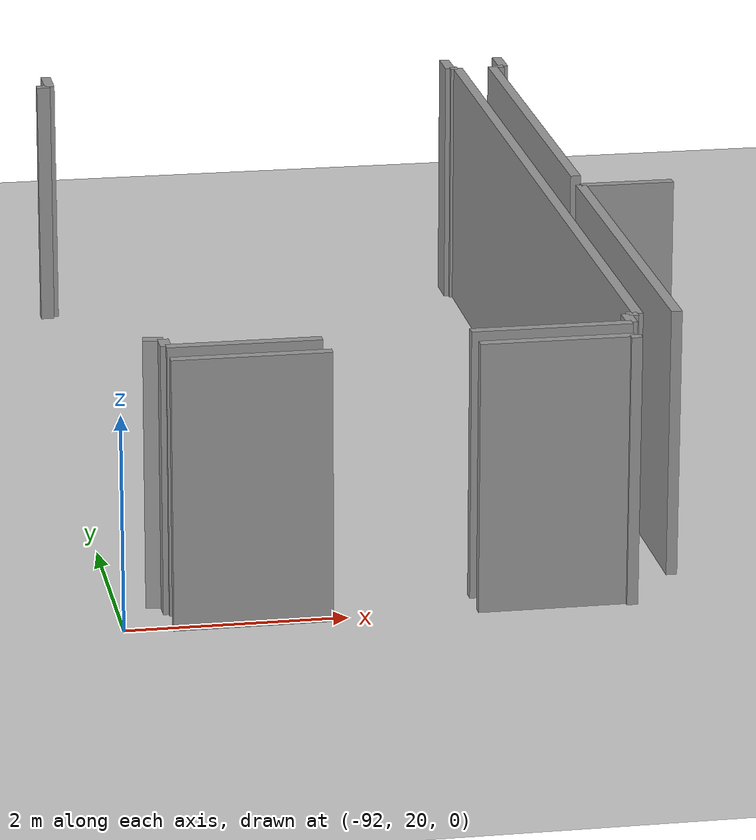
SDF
<sdf version="1.6">
 <world name="default">
  <model name="ground_plane">
   <static>1</static>
   <link name="link">
    <collision name="collision">
     <geometry><plane><normal>0 0 1</normal><size>100 100</size></plane></geometry>
     <surface><friction><ode><mu>100</mu><mu2>50</mu2></ode></friction></surface>
    </collision>
    <visual name="visual">
     <cast_shadows>0</cast_shadows>
     <geometry><plane><normal>0 0 1</normal><size>100 100</size></plane></geometry>
     <material>
      <script><uri>file://media/materials/scripts/gazebo.material</uri><name>Gazebo/Grey</name></script>
     </material>
    </visual>
   </link>
  </model>
  <model name="50010535_PLAN1">
   <static>1</static>
   <link name="Wall_16">
    <collision name="Wall_16_Collision">
     <geometry><box><size>0.135194373678 0.1 2.5</size></box></geometry>
     <pose>0.0675971868389 0 1.25 0 0 0</pose>
    </collision>
    <visual name="Wall_16_Visual">
     <pose>0.0675971868389 0 1.25 0 0 0</pose>
     <geometry><box><size>0.135194373678 0.1 2.5</size></box></geometry>
     <material>
      <script><uri>file://media/materials/scripts/gazebo.material</uri><name>Gazebo/Grey</name></script>
      <ambient>1 1 1 1</ambient>
     </material>
    </visual>
    <pose>10.8676454705 -0.413969238197 0 0 0 0.0</pose>
   </link>
   <link name="Wall_17">
    <collision name="Wall_17_Collision">
     <geometry><box><size>0.375850523815 0.1 2.5</size></box></geometry>
     <pose>0.187925261907 0 1.25 0 0 0</pose>
    </collision>
    <visual name="Wall_17_Visual">
     <pose>0.187925261907 0 1.25 0 0 0</pose>
     <geometry><box><size>0.375850523815 0.1 2.5</size></box></geometry>
     <material>
      <script><uri>file://media/materials/scripts/gazebo.material</uri><name>Gazebo/Grey</name></script>
      <ambient>1 1 1 1</ambient>
     </material>
    </visual>
    <pose>11.0028398442 -0.413969238197 0 0 0 1.57079632679</pose>
   </link>
   <link name="Wall_18">
    <collision name="Wall_18_Collision">
     <geometry><box><size>0.347134425646 0.1 2.5</size></box></geometry>
     <pose>0.173567212823 0 1.25 0 0 0</pose>
    </collision>
    <visual name="Wall_18_Visual">
     <pose>0.173567212823 0 1.25 0 0 0</pose>
     <geometry><box><size>0.347134425646 0.1 2.5</size></box></geometry>
     <material>
      <script><uri>file://media/materials/scripts/gazebo.material</uri><name>Gazebo/Grey</name></script>
      <ambient>1 1 1 1</ambient>
     </material>
    </visual>
    <pose>15.2238521502 -0.0381187143828 0 0 0 -1.57079632679</pose>
   </link>
   <link name="Wall_19">
    <collision name="Wall_19_Collision">
     <geometry><box><size>0.0785245516286 0.1 2.5</size></box></geometry>
     <pose>0.0392622758143 0 1.25 0 0 0</pose>
    </collision>
    <visual name="Wall_19_Visual">
     <pose>0.0392622758143 0 1.25 0 0 0</pose>
     <geometry><box><size>0.0785245516286 0.1 2.5</size></box></geometry>
     <material>
      <script><uri>file://media/materials/scripts/gazebo.material</uri><name>Gazebo/Grey</name></script>
      <ambient>1 1 1 1</ambient>
     </material>
    </visual>
    <pose>15.2238521502 -0.385253140029 0 0 0 0.0</pose>
   </link>
   <link name="Wall_20">
    <collision name="Wall_20_Collision">
     <geometry><box><size>8.54901113702 0.1 2.5</size></box></geometry>
     <pose>4.27450556851 0 1.25 0 0 0</pose>
    </collision>
    <visual name="Wall_20_Visual">
     <pose>4.27450556851 0 1.25 0 0 0</pose>
     <geometry><box><size>8.54901113702 0.1 2.5</size></box></geometry>
     <material>
      <script><uri>file://media/materials/scripts/gazebo.material</uri><name>Gazebo/Grey</name></script>
      <ambient>1 1 1 1</ambient>
     </material>
    </visual>
    <pose>15.3023767018 -0.385253140029 0 0 0 -1.57079632679</pose>
   </link>
   <link name="Wall_21">
    <collision name="Wall_21_Collision">
     <geometry><box><size>0.102920528834 0.1 2.5</size></box></geometry>
     <pose>0.0514602644168 0 1.25 0 0 0</pose>
    </collision>
    <visual name="Wall_21_Visual">
     <pose>0.0514602644168 0 1.25 0 0 0</pose>
     <geometry><box><size>0.102920528834 0.1 2.5</size></box></geometry>
     <material>
      <script><uri>file://media/materials/scripts/gazebo.material</uri><name>Gazebo/Grey</name></script>
      <ambient>1 1 1 1</ambient>
     </material>
    </visual>
    <pose>15.3023767018 -8.93426427705 0 0 0 3.14159265359</pose>
   </link>
   <link name="Wall_22">
    <collision name="Wall_22_Collision">
     <geometry><box><size>0.232778282498 0.1 2.5</size></box></geometry>
     <pose>0.116389141249 0 1.25 0 0 0</pose>
    </collision>
    <visual name="Wall_22_Visual">
     <pose>0.116389141249 0 1.25 0 0 0</pose>
     <geometry><box><size>0.232778282498 0.1 2.5</size></box></geometry>
     <material>
      <script><uri>file://media/materials/scripts/gazebo.material</uri><name>Gazebo/Grey</name></script>
      <ambient>1 1 1 1</ambient>
     </material>
    </visual>
    <pose>15.199456173 -8.93426427705 0 0 0 -1.57079632679</pose>
   </link>
   <link name="Wall_23">
    <collision name="Wall_23_Collision">
     <geometry><box><size>1.4535936418 0.1 2.5</size></box></geometry>
     <pose>0.726796820899 0 1.25 0 0 0</pose>
    </collision>
    <visual name="Wall_23_Visual">
     <pose>0.726796820899 0 1.25 0 0 0</pose>
     <geometry><box><size>1.4535936418 0.1 2.5</size></box></geometry>
     <material>
      <script><uri>file://media/materials/scripts/gazebo.material</uri><name>Gazebo/Grey</name></script>
      <ambient>1 1 1 1</ambient>
     </material>
    </visual>
    <pose>15.199456173 -9.16704255954 0 0 0 3.14159265359</pose>
   </link>
   <link name="Wall_24">
    <collision name="Wall_24_Collision">
     <geometry><box><size>1.3796433359 0.1 2.5</size></box></geometry>
     <pose>0.689821667948 0 1.25 0 0 0</pose>
    </collision>
    <visual name="Wall_24_Visual">
     <pose>0.689821667948 0 1.25 0 0 0</pose>
     <geometry><box><size>1.3796433359 0.1 2.5</size></box></geometry>
     <material>
      <script><uri>file://media/materials/scripts/gazebo.material</uri><name>Gazebo/Grey</name></script>
      <ambient>1 1 1 1</ambient>
     </material>
    </visual>
    <pose>12.4241596412 -9.16704255954 0 0 0 3.14159265359</pose>
   </link>
   <link name="Wall_25">
    <collision name="Wall_25_Collision">
     <geometry><box><size>0.203299810042 0.1 2.5</size></box></geometry>
     <pose>0.101649905021 0 1.25 0 0 0</pose>
    </collision>
    <visual name="Wall_25_Visual">
     <pose>0.101649905021 0 1.25 0 0 0</pose>
     <geometry><box><size>0.203299810042 0.1 2.5</size></box></geometry>
     <material>
      <script><uri>file://media/materials/scripts/gazebo.material</uri><name>Gazebo/Grey</name></script>
      <ambient>1 1 1 1</ambient>
     </material>
    </visual>
    <pose>11.0445163053 -9.16704255954 0 0 0 1.57079632679</pose>
   </link>
   <link name="Wall_26">
    <collision name="Wall_26_Collision">
     <geometry><box><size>0.178580289246 0.1 2.5</size></box></geometry>
     <pose>0.0892901446232 0 1.25 0 0 0</pose>
    </collision>
    <visual name="Wall_26_Visual">
     <pose>0.0892901446232 0 1.25 0 0 0</pose>
     <geometry><box><size>0.178580289246 0.1 2.5</size></box></geometry>
     <material>
      <script><uri>file://media/materials/scripts/gazebo.material</uri><name>Gazebo/Grey</name></script>
      <ambient>1 1 1 1</ambient>
     </material>
    </visual>
    <pose>11.0445163053 -8.9637427495 0 0 0 3.00311679715</pose>
   </link>
   <link name="Wall_27">
    <collision name="Wall_27_Collision">
     <geometry><box><size>4.16891672967 0.1 2.5</size></box></geometry>
     <pose>2.08445836483 0 1.25 0 0 0</pose>
    </collision>
    <visual name="Wall_27_Visual">
     <pose>2.08445836483 0 1.25 0 0 0</pose>
     <geometry><box><size>4.16891672967 0.1 2.5</size></box></geometry>
     <material>
      <script><uri>file://media/materials/scripts/gazebo.material</uri><name>Gazebo/Grey</name></script>
      <ambient>1 1 1 1</ambient>
     </material>
    </visual>
    <pose>15.6749236037 -4.55721936685 0 0 0 1.57079632679</pose>
   </link>
   <link name="Wall_28">
    <collision name="Wall_28_Collision">
     <geometry><box><size>0.115880891724 0.1 2.5</size></box></geometry>
     <pose>0.0579404458619 0 1.25 0 0 0</pose>
    </collision>
    <visual name="Wall_28_Visual">
     <pose>0.0579404458619 0 1.25 0 0 0</pose>
     <geometry><box><size>0.115880891724 0.1 2.5</size></box></geometry>
     <material>
      <script><uri>file://media/materials/scripts/gazebo.material</uri><name>Gazebo/Grey</name></script>
      <ambient>1 1 1 1</ambient>
     </material>
    </visual>
    <pose>15.6749236037 -0.38830263718 0 0 0 0.0</pose>
   </link>
   <link name="Wall_29">
    <collision name="Wall_29_Collision">
     <geometry><box><size>0.357045291386 0.1 2.5</size></box></geometry>
     <pose>0.178522645693 0 1.25 0 0 0</pose>
    </collision>
    <visual name="Wall_29_Visual">
     <pose>0.178522645693 0 1.25 0 0 0</pose>
     <geometry><box><size>0.357045291386 0.1 2.5</size></box></geometry>
     <material>
      <script><uri>file://media/materials/scripts/gazebo.material</uri><name>Gazebo/Grey</name></script>
      <ambient>1 1 1 1</ambient>
     </material>
    </visual>
    <pose>15.7908044955 -0.38830263718 0 0 0 1.57079632679</pose>
   </link>
   <link name="Wall_81">
    <collision name="Wall_81_Collision">
     <geometry><box><size>1.42004917314 0.1 2.5</size></box></geometry>
     <pose>0.710024586571 0 1.25 0 0 0</pose>
    </collision>
    <visual name="Wall_81_Visual">
     <pose>0.710024586571 0 1.25 0 0 0</pose>
     <geometry><box><size>1.42004917314 0.1 2.5</size></box></geometry>
     <material>
      <script><uri>file://media/materials/scripts/gazebo.material</uri><name>Gazebo/Grey</name></script>
      <ambient>1 1 1 1</ambient>
     </material>
    </visual>
    <pose>11.0338430653 -9.52815384713 0 0 0 0.0</pose>
   </link>
   <link name="Wall_82">
    <collision name="Wall_82_Collision">
     <geometry><box><size>1.38930007687 0.1 2.5</size></box></geometry>
     <pose>0.694650038436 0 1.25 0 0 0</pose>
    </collision>
    <visual name="Wall_82_Visual">
     <pose>0.694650038436 0 1.25 0 0 0</pose>
     <geometry><box><size>1.38930007687 0.1 2.5</size></box></geometry>
     <material>
      <script><uri>file://media/materials/scripts/gazebo.material</uri><name>Gazebo/Grey</name></script>
      <ambient>1 1 1 1</ambient>
     </material>
    </visual>
    <pose>13.7562816465 -9.52815384713 0 0 0 0.0</pose>
   </link>
   <link name="Wall_83">
    <collision name="Wall_83_Collision">
     <geometry><box><size>0.0838611716422 0.1 2.5</size></box></geometry>
     <pose>0.0419305858211 0 1.25 0 0 0</pose>
    </collision>
    <visual name="Wall_83_Visual">
     <pose>0.0419305858211 0 1.25 0 0 0</pose>
     <geometry><box><size>0.0838611716422 0.1 2.5</size></box></geometry>
     <material>
      <script><uri>file://media/materials/scripts/gazebo.material</uri><name>Gazebo/Grey</name></script>
      <ambient>1 1 1 1</ambient>
     </material>
    </visual>
    <pose>15.1455817233 -9.52815384713 0 0 0 -1.57079632679</pose>
   </link>
   <link name="Wall_87">
    <collision name="Wall_87_Collision">
     <geometry><box><size>4.05913483225 0.1 2.5</size></box></geometry>
     <pose>2.02956741612 0 1.25 0 0 0</pose>
    </collision>
    <visual name="Wall_87_Visual">
     <pose>2.02956741612 0 1.25 0 0 0</pose>
     <geometry><box><size>4.05913483225 0.1 2.5</size></box></geometry>
     <material>
      <script><uri>file://media/materials/scripts/gazebo.material</uri><name>Gazebo/Grey</name></script>
      <ambient>1 1 1 1</ambient>
     </material>
    </visual>
    <pose>15.6601843675 -8.92969003132 0 0 0 1.57079632679</pose>
   </link>
   <link name="Wall_88">
    <collision name="Wall_88_Collision">
     <geometry><box><size>0.905954778499 0.1 2.5</size></box></geometry>
     <pose>0.452977389249 0 1.25 0 0 0</pose>
    </collision>
    <visual name="Wall_88_Visual">
     <pose>0.452977389249 0 1.25 0 0 0</pose>
     <geometry><box><size>0.905954778499 0.1 2.5</size></box></geometry>
     <material>
      <script><uri>file://media/materials/scripts/gazebo.material</uri><name>Gazebo/Grey</name></script>
      <ambient>1 1 1 1</ambient>
     </material>
    </visual>
    <pose>15.6601843675 -4.87055519907 0 0 0 0.0</pose>
   </link>
   <pose>-102.6 29.5103111122 0 0 0 0</pose>
  </model>
 </world>
</sdf>
